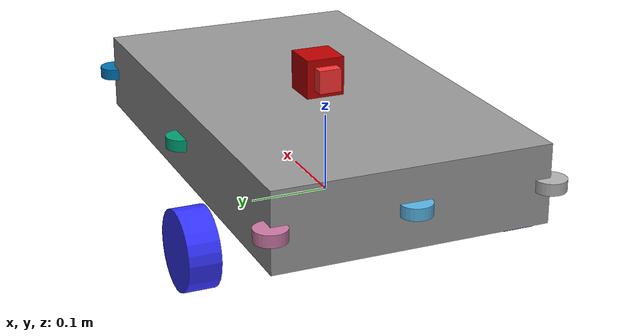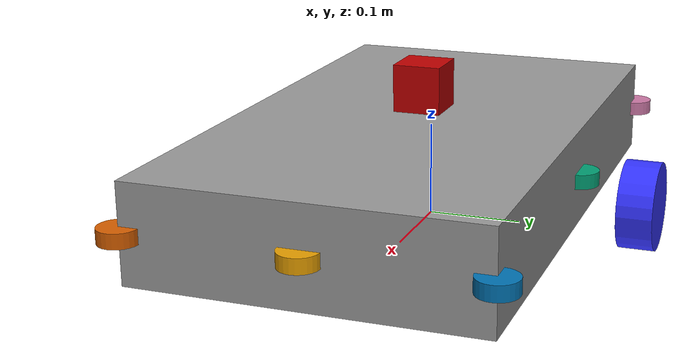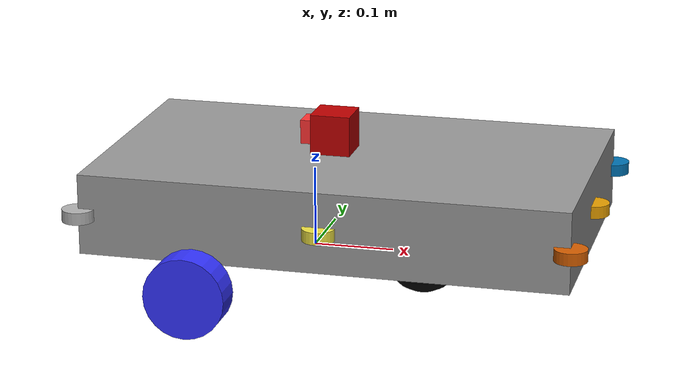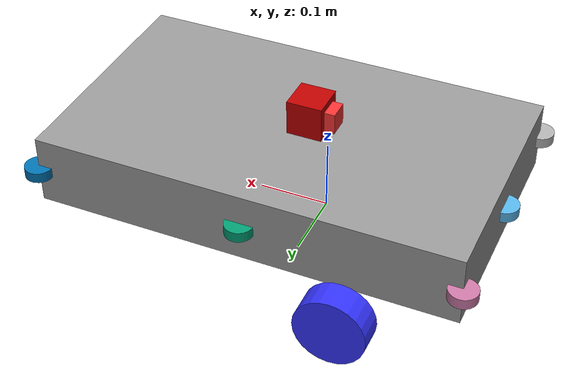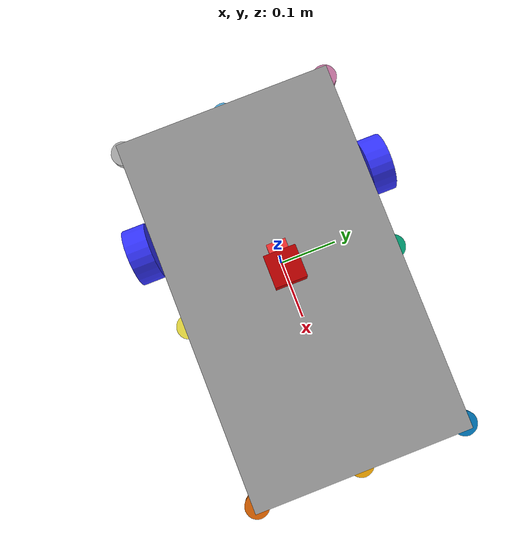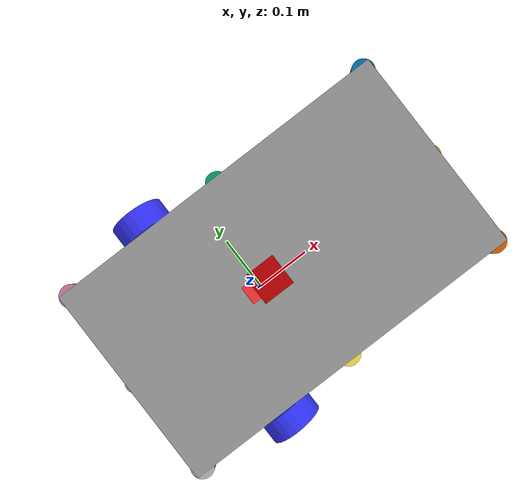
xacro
<?xml version="1.0"?>

<robot xmlns:xacro="http://www.ros.org/wiki/xacro" name="Marmitron">
    <xacro:include filename="robot_design.xacro"/>
    <xacro:include filename="lidar.xacro"/>
    <xacro:include filename="imu.xacro"/>
    <xacro:include filename="gps.xacro"/>
    <xacro:include filename="robot_controller.xacro"/> <!-- O local com as configurações para simulação -->
    <xacro:include filename="ultrasound.xacro"/>

    <xacro:ultrasound_sensor name="ultrasound_frente"   parent="chassi" xyz="0.45 0.0 0.075"    rpy="0 0 0"          topic="ultrasound/front"/>
    <xacro:ultrasound_sensor name="ultrasound_tras"     parent="chassi" xyz="-0.15 0.0 0.075"   rpy="0 0 ${pi}"      topic="ultrasound/rear"/>
    <xacro:ultrasound_sensor name="ultrasound_esquerda" parent="chassi" xyz="0.15 0.175 0.075"  rpy="0 0 ${pi/2}"    topic="ultrasound/left"/>
    <xacro:ultrasound_sensor name="ultrasound_direita"  parent="chassi" xyz="0.15 -0.175 0.075" rpy="0 0 ${-pi/2}"   topic="ultrasound/right"/>
    <xacro:ultrasound_sensor name="ultrasound_fe"       parent="chassi" xyz="0.45 0.175 0.075"  rpy="0 0 ${pi/4}"    topic="ultrasound/fe"/>
    <xacro:ultrasound_sensor name="ultrasound_fd"       parent="chassi" xyz="0.45 -0.175 0.075" rpy="0 0 ${-pi/4}"   topic="ultrasound/fd"/>
    <xacro:ultrasound_sensor name="ultrasound_te"       parent="chassi" xyz="-0.15 0.175 0.075" rpy="0 0 ${3*pi/4}"  topic="ultrasound/te"/>
    <xacro:ultrasound_sensor name="ultrasound_td"       parent="chassi" xyz="-0.15 -0.175 0.075" rpy="0 0 ${-3*pi/4}" topic="ultrasound/td"/>

</robot>

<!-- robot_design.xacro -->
<!-- Corpo base do robo, suas juntas e localização de sensores -->
<!-- Dimensões são em metros -->
<robot xmlns:xacro="http://www.ros.org/wiki/xacro">
    <xacro:include filename="materials.xacro"/>
    <xacro:include filename="inertials.xacro"/>

    <!-- Chassi -->
    <xacro:property name="chassi_x" value="0.6"/>
    <xacro:property name="chassi_y" value="0.35"/>
    <xacro:property name="chassi_z" value="0.1"/>
    <xacro:property name="chassi_massa" value="5.3"/>
    <xacro:property name="chassi_origem" value="0.15 0.0 0.075"/>
    <xacro:property name="chassi_joint_xyz" value="-0.1 0 0"/>

    <!-- Rodas trazeiras -->
    <xacro:property name="roda_raio" value="0.05"/>
    <xacro:property name="roda_comprimento" value="0.04"/>
    <xacro:property name="roda_massa" value="0.5"/>
    <xacro:property name="roda_y" value="0.215"/>
    <xacro:property name="roda_mu1" value="0.65"/>
    <xacro:property name="roda_mu2" value="0.65"/>

    <!-- Roda(as) de apio -->
    <xacro:property name="apoio_raio" value="0.05"/>
    <xacro:property name="apoio_massa" value="0.5"/>
    <xacro:property name="apoio_x" value="0.24"/>
    <xacro:property name="apoio_mu1" value="0.2"/>
    <xacro:property name="apoio_mu2" value="0.2"/>

    <link name="base_link"/>

    <!-- Chassi -->
    <joint name="junta_chassi" type="fixed">
        <parent link="base_link"/>
        <child link="chassi"/>
        <origin xyz="${chassi_joint_xyz}" rpy="0 0 0"/>
    </joint>

    <link name="chassi">
        <visual>
            <origin xyz="${chassi_origem}"/>
            <geometry>
                <box size="${chassi_x} ${chassi_y} ${chassi_z}"/>
            </geometry>
            <material name="gray"/>
        </visual>
        <collision>
            <origin xyz="${chassi_origem}"/>
            <geometry>
                <box size="${chassi_x} ${chassi_y} ${chassi_z}"/>
            </geometry>
        </collision>
        <xacro:inertial_box mass="${chassi_massa}" x="${chassi_x}" y="${chassi_y}" z="${chassi_z}">
            <origin xyz="${chassi_origem}" rpy="0 0 0"/>
        </xacro:inertial_box>
    </link>

    <!-- Roda Esquerda Traseira -->
    <joint name="roda_esquerda_joint" type="continuous">
        <parent link="chassi"/>
        <child link="roda_esquerda"/>
        <origin xyz="0 ${roda_y} 0" rpy="0 0 0"/>
        <axis xyz="0 1 0"/>
    </joint>

    <link name="roda_esquerda">
        <visual>
            <origin xyz="0 0 0" rpy="${pi/2} 0 0"/>
            <geometry><cylinder radius="${roda_raio}" length="${roda_comprimento}"/></geometry>
            <material name="blue"/>
        </visual>
        <collision>
            <origin xyz="0 0 0" rpy="${pi/2} 0 0"/>
            <geometry><cylinder radius="${roda_raio}" length="${roda_comprimento}"/></geometry>
        </collision>
        <xacro:inertial_cylinder mass="${roda_massa}" length="${roda_comprimento}" radius="${roda_raio}">
            <origin xyz="0 0 0" rpy="${pi/2} 0 0"/>
        </xacro:inertial_cylinder>
    </link>
    <gazebo reference="roda_esquerda">
        <mu1>${roda_mu1}</mu1>
        <mu2>${roda_mu2}</mu2>
    </gazebo>

    <!-- Roda Direita Traseira -->
    <joint name="roda_direita_joint" type="continuous">
        <parent link="chassi"/>
        <child link="roda_direita"/>
        <origin xyz="0 -${roda_y} 0" rpy="0 0 0"/>
        <axis xyz="0 1 0"/>
    </joint>

    <link name="roda_direita">
        <visual>
            <origin xyz="0 0 0" rpy="${pi/2} 0 0"/>
            <geometry><cylinder radius="${roda_raio}" length="${roda_comprimento}"/></geometry>
            <material name="blue"/>
        </visual>
        <collision>
            <origin xyz="0 0 0" rpy="${pi/2} 0 0"/>
            <geometry><cylinder radius="${roda_raio}" length="${roda_comprimento}"/></geometry>
        </collision>
        <xacro:inertial_cylinder mass="${roda_massa}" length="${roda_comprimento}" radius="${roda_raio}">
            <origin xyz="0 0 0" rpy="${pi/2} 0 0"/>
        </xacro:inertial_cylinder>
    </link>
    <gazebo reference="roda_direita">
        <mu1>${roda_mu1}</mu1>
        <mu2>${roda_mu2}</mu2>
    </gazebo>

    <!-- Rodas de Apoio -->
    <joint name="roda_frente_joint" type="fixed">
        <parent link="chassi"/>
        <child link="roda_frente"/>
        <origin xyz="${apoio_x} 0 0"/>
    </joint>

    <link name="roda_frente">

        <visual>
            <geometry>
                <sphere radius="${apoio_raio}"/>
            </geometry>
            <material name="black"/>
        </visual>

        <collision>
            <geometry>
                <sphere radius="${apoio_raio}"/>
            </geometry>
        </collision>

        <xacro:inertial_sphere mass="${apoio_massa}" radius="${apoio_raio}">
            <origin xyz="0 0 0" rpy="0 0 0"/>
        </xacro:inertial_sphere>

    </link>

    <gazebo reference="roda_frente">
        <self_collide>false</self_collide>
        <mu1>${apoio_mu1}</mu1>
        <mu2>${apoio_mu2}</mu2>
    </gazebo>

</robot>

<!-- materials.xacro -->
<!-- Cores para melhor visualização na simulação e no Rviz-->

<robot xmlns:xacro="http://www.ros.org/wiki/xacro">

    <material name="white">
        <color rgba="1 1 1 1"/>
    </material>

    <material name="blue">
        <color rgba="0.2 0.2 1 1"/>
    </material>

    <material name="black">
        <color rgba="0 0 0 1"/>
    </material>

    <material name="red">
        <color rgba="1 0.2 0.2 1"/>
    </material>

    <material name="gray">
        <color rgba="0.6 0.6 0.6 1"/>
    </material>

</robot>

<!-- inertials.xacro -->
<robot xmlns:xacro="http://www.ros.org/wiki/xacro" >

    <!-- Modelos obtidos pelo site https://en.wikipedia.org/wiki/List_of_moments_of_inertia -->

    <xacro:macro name="inertial_sphere" params="mass radius *origin">
        <inertial>
            <xacro:insert_block name="origin"/>
            <mass value="${mass}" />
            <inertia ixx="${(2/5) * mass * (radius*radius)}" ixy="0.0" ixz="0.0"
                    iyy="${(2/5) * mass * (radius*radius)}" iyz="0.0"
                    izz="${(2/5) * mass * (radius*radius)}" />
        </inertial>
    </xacro:macro>

    <xacro:macro name="inertial_box" params="mass x y z *origin">
        <inertial>
            <xacro:insert_block name="origin"/>
            <mass value="${mass}" />
            <inertia ixx="${(1/12) * mass * (y*y+z*z)}" ixy="0.0" ixz="0.0"
                    iyy="${(1/12) * mass * (x*x+z*z)}" iyz="0.0"
                    izz="${(1/12) * mass * (x*x+y*y)}" />
        </inertial>
    </xacro:macro>

    <xacro:macro name="inertial_cylinder" params="mass length radius *origin">
        <inertial>
            <xacro:insert_block name="origin"/>
            <mass value="${mass}" />
            <inertia ixx="${(1/12) * mass * (3*radius*radius + length*length)}" ixy="0.0" ixz="0.0"
                    iyy="${(1/12) * mass * (3*radius*radius + length*length)}" iyz="0.0"
                    izz="${(1/2) * mass * (radius*radius)}" />
        </inertial>
    </xacro:macro>
</robot>

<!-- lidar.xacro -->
<robot xmlns:xacro="http://www.ros.org/wiki/xacro">

    <!-- Embora seja dito como um lazer, esse seria a camera, que para a simulação é tratada como um lidar-->

    <xacro:property name="lazer_x" value="0.125"/>
    <xacro:property name="lazer_y" value="0.0"/>
    <xacro:property name="lazer_z" value="0.15"/>

    <joint name="lazer_joint" type="fixed">
        <parent link="chassi"/>
        <child link="lazer_frame"/>
        <origin xyz="${lazer_x} ${lazer_y} ${lazer_z}" rpy="0.0 0.0 0.0"/>
    </joint>

    <link name="lazer_frame">
        <visual>
            <origin xyz="0 0 0" rpy="0 0 0"/>
            <geometry>
                <box size="0.05 0.05 0.05"/>
            </geometry>
            <material name="red">
                <color rgba="0.75 0.0 0.0 1.0"/>
            </material>
        </visual>
        <collision>
            <origin xyz="0 0 0" rpy="0 0 0"/>
            <geometry>
                <box size="0.05 0.05 0.05"/>
            </geometry>
        </collision>
        <inertial>
            <mass value="0.1"/>
            <inertia ixx="0.000004" ixy="0" ixz="0"
                     iyy="0.000004" iyz="0"
                     izz="0.000004"/>
        </inertial>
    </link>
</robot>

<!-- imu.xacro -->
<robot xmlns:xacro="http://www.ros.org/wiki/xacro">

    <xacro:property name="imu_x" value="0.15"/>
    <xacro:property name="imu_y" value="0.0"/>
    <xacro:property name="imu_z" value="0.075"/>

    <xacro:property name="imu_update_rate" value="100"/>
    <xacro:property name="imu_gyro_stddev" value="0.009"/>
    <xacro:property name="imu_accel_stddev" value="0.021"/>
    <xacro:property name="imu_topic" value="/demo/imu"/>

    <joint name="imu_joint" type="fixed">
        <parent link="chassi"/>
        <child link="imu_frame"/>
        <origin xyz="${imu_x} ${imu_y} ${imu_z}" rpy="0 0 0"/>
    </joint>

    <link name="imu_frame">
        <inertial>
            <mass value="0.01"/>
            <inertia ixx="0.000001" ixy="0" ixz="0"
                     iyy="0.000001" iyz="0"
                     izz="0.000001"/>
        </inertial>
    </link>

</robot>

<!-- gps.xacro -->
<robot xmlns:xacro="http://www.ros.org/wiki/xacro">

    <link name="gps_link">
    <inertial>
        <mass value="0.001"/>
        <inertia ixx="0.0001" ixy="0.0" ixz="0.0" iyy="0.0001" iyz="0.0" izz="0.0001"/>
    </inertial>
    <visual>
        <geometry>
            <box size="0.03 0.03 0.03"/>
        </geometry>
        <material name="red"/>
    </visual>
</link>

<!-- GPS Joint (fixed to base_link) -->
<joint name="gps_joint" type="fixed">
    <parent link="base_link"/>
    <child link="gps_link"/>
    <origin xyz="0 0 0.15" rpy="0 0 0"/>
</joint>

</robot>

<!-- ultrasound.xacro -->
<robot xmlns:xacro="http://www.ros.org/wiki/xacro">
    <xacro:macro name="ultrasound_sensor" params="name parent xyz rpy topic">

        <link name="${name}_link">
            <visual>
                <geometry><cylinder length="0.015" radius="0.02"/></geometry>
            </visual>
            <inertial>
                <mass value="0.005"/>
                <origin xyz="0 0 0" rpy="0 0 0"/>
                <inertia ixx="1e-7" ixy="0" ixz="0" iyy="1e-7" iyz="0" izz="1e-7"/>
            </inertial>
        </link>

        <joint name="${name}_joint" type="fixed">
            <parent link="${parent}"/>
            <child link="${name}_link"/>
            <origin xyz="${xyz}" rpy="${rpy}"/>
        </joint>

        <gazebo reference="${name}_link">
            <sensor type="ray" name="${name}_sensor">
                <pose>0 0 0 0 0 0</pose>
                <always_on>true</always_on>
                <update_rate>2</update_rate>
                <visualize>true</visualize>

                <ray>
                    <scan>
                        <horizontal>
                            <samples>3</samples>
                            <resolution>1</resolution>
                            <min_angle>-0.05</min_angle>
                            <max_angle>0.05</max_angle>
                        </horizontal>
                    </scan>
                    <range>
                        <min>0.05</min>
                        <max>2.0</max>
                        <resolution>0.01</resolution>
                    </range>
                </ray>

                <plugin name="gazebo_ros_range_${name}" filename="libgazebo_ros_ray_sensor.so">
                    <ros>
                        <namespace>/sensor</namespace>
                        <remapping>~/out:=/${topic}</remapping>
                    </ros>
                    <output_type>sensor_msgs/Range</output_type>
                    <radiation_type>ultrasound</radiation_type>
                    <frame_name>${name}_link</frame_name>
                </plugin>

            </sensor>
        </gazebo>

    </xacro:macro>
</robot>
